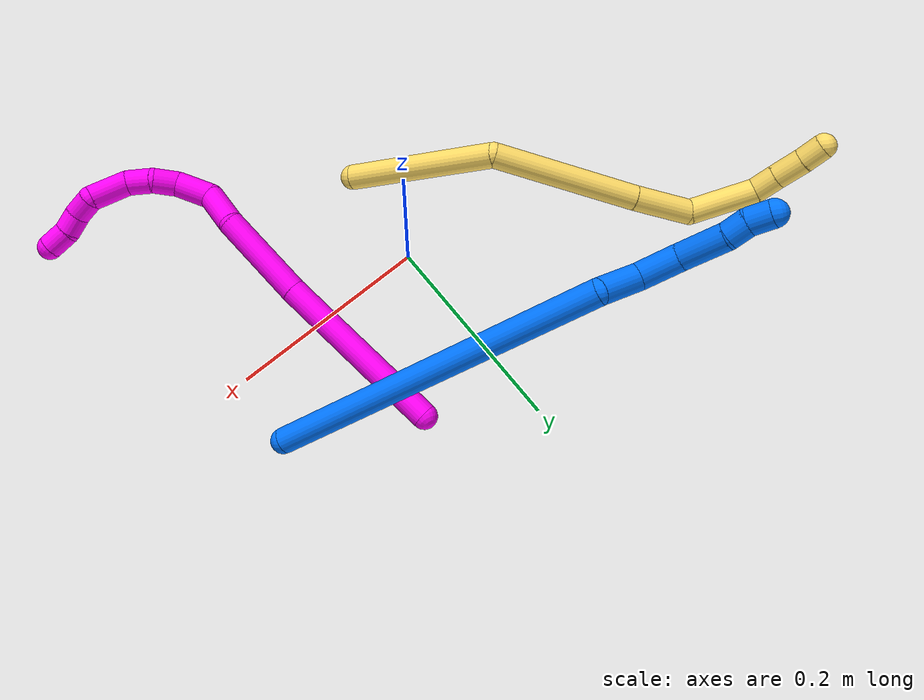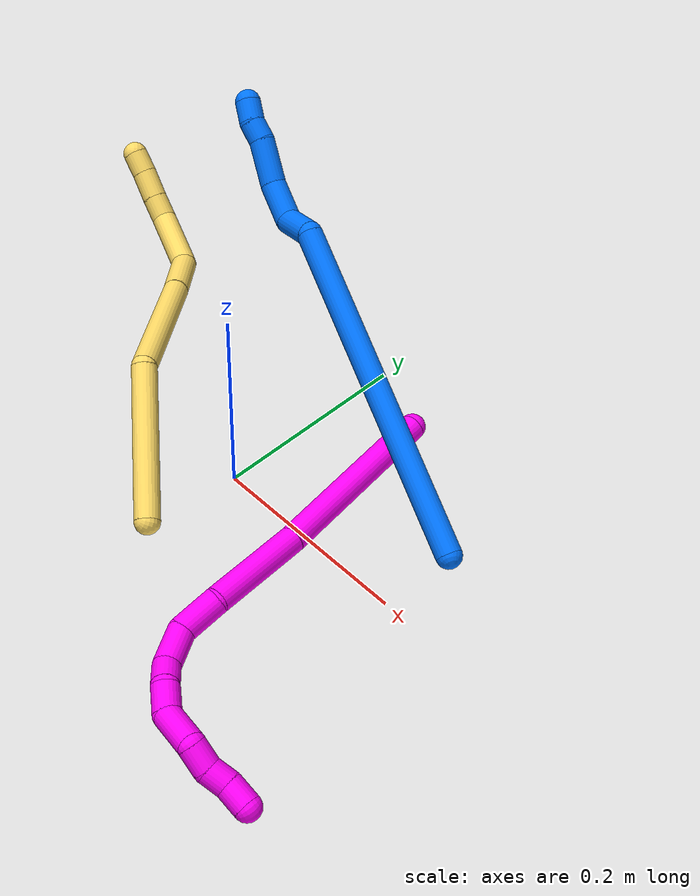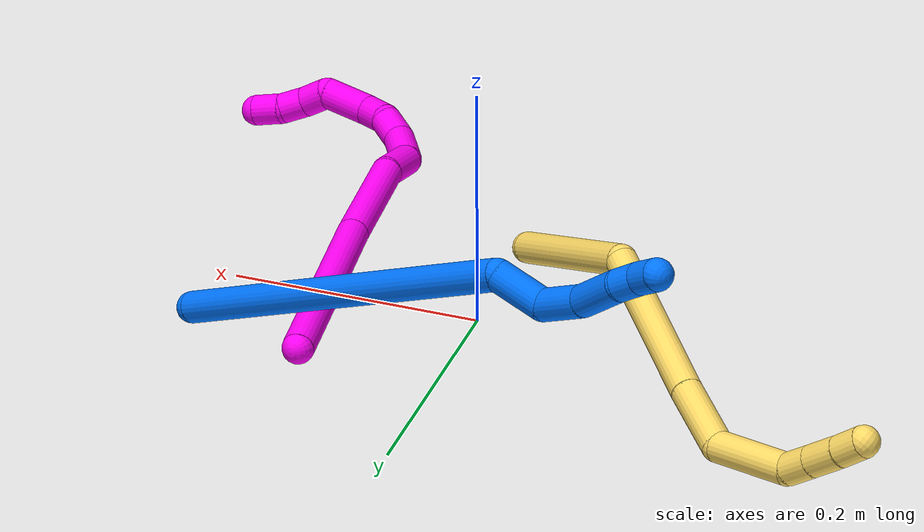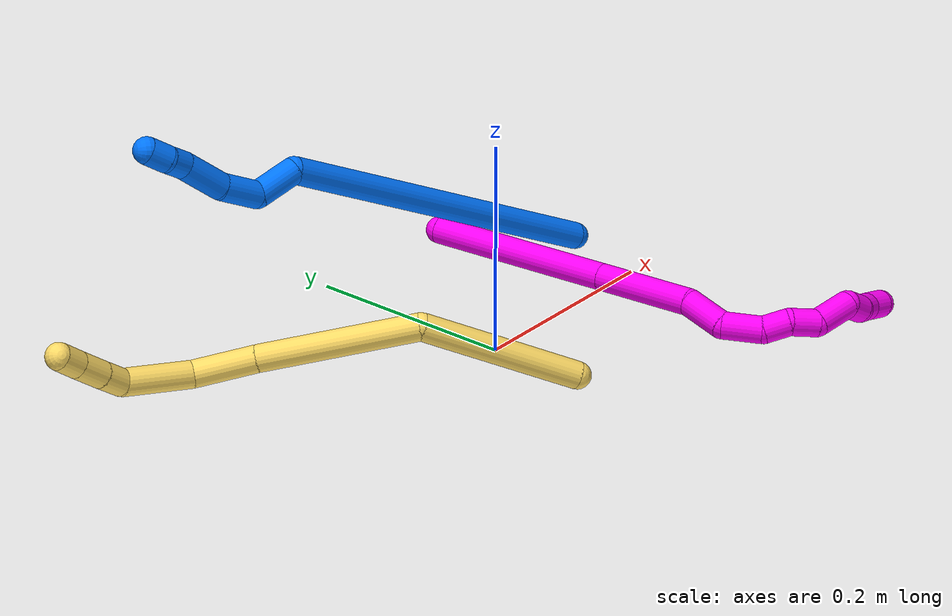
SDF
<sdf version="1.7">
 <world name="default">
  <model name="photoneo_s_sensor">
   <static>1</static>
   <pose>0 0 2 1.57079 1.57079 3.14159</pose>
   <link name="link">
    <inertial><mass>0.1</mass></inertial>
    <sensor name="sensor" type="depth">
     <update_rate>30</update_rate>
     <camera>
      <horizontal_fov>1.22</horizontal_fov>
      <image><width>1920</width><height>1200</height><format>B8G8R8</format></image>
      <clip><near>0.1</near><far>4</far></clip>
      <depth_camera><output>points</output></depth_camera>
     </camera>
     <plugin name="camera_plugin" filename="libgazebo_ros_depth_camera.so">
      <baseline>0.2</baseline>
      <alwaysOn>1</alwaysOn>
      <updateRate>0.0</updateRate>
      <cameraName>camera_ir</cameraName>
      <imageTopicName>/camera/color/image_raw</imageTopicName>
      <cameraInfoTopicName>/camera/color/camera_info</cameraInfoTopicName>
      <depthImageTopicName>/camera/depth/image_raw</depthImageTopicName>
      <depthImageCameraInfoTopicName>/camera/depth/camera_info</depthImageCameraInfoTopicName>
      <pointCloudTopicName>/camera/depth/points</pointCloudTopicName>
      <frameName>fr_optical</frameName>
      <pointCloudCutoff>0.1</pointCloudCutoff>
      <pointCloudCutoffMax>2.0</pointCloudCutoffMax>
      <distortionK1>0</distortionK1>
      <distortionK2>0</distortionK2>
      <distortionK3>0</distortionK3>
      <distortionT1>0</distortionT1>
      <distortionT2>0</distortionT2>
      <CxPrime>0</CxPrime>
      <Cx>0</Cx>
      <Cy>0</Cy>
      <focalLength>0</focalLength>
      <hackBaseline>0</hackBaseline>
     </plugin>
    </sensor>
   </link>
  </model>
  <model name="bin">
   <static>1</static>
   <link name="bottom">
    <collision name="collision-bottom">
     <pose>0 0 -0.01 0 -0 0</pose>
     <geometry><box><size>0.8 0.6 0.02</size></box></geometry>
     <surface>
      <friction><ode><mu>100</mu><mu2>100</mu2></ode></friction>
      <contact><collide_bitmask>65535</collide_bitmask></contact>
     </surface>
    </collision>
   </link>
   <link name="west_wall">
    <collision name="collision-west_wall">
     <pose>-0.41 0 0.1 0 -0 0</pose>
     <geometry><box><size>0.02 0.6 0.2</size></box></geometry>
     <surface>
      <friction><ode><mu>100</mu><mu2>100</mu2></ode></friction>
      <contact><collide_bitmask>65535</collide_bitmask></contact>
     </surface>
    </collision>
   </link>
   <link name="east_wall">
    <collision name="collision-east_wall">
     <pose>0.41 0 0.1 0 -0 0</pose>
     <geometry><box><size>0.02 0.6 0.2</size></box></geometry>
     <surface>
      <friction><ode><mu>100</mu><mu2>100</mu2></ode></friction>
      <contact><collide_bitmask>65535</collide_bitmask></contact>
     </surface>
    </collision>
   </link>
   <link name="south_wall">
    <collision name="collision-south_wall">
     <pose>0 -0.31 0.1 0 -0 0</pose>
     <geometry><box><size>0.8 0.02 0.2</size></box></geometry>
     <surface>
      <friction><ode><mu>100</mu><mu2>100</mu2></ode></friction>
      <contact><collide_bitmask>65535</collide_bitmask></contact>
     </surface>
    </collision>
   </link>
   <link name="north_wall">
    <collision name="collision-north_wall">
     <pose>0 0.31 0.1 0 -0 0</pose>
     <geometry><box><size>0.8 0.02 0.2</size></box></geometry>
     <surface>
      <friction><ode><mu>100</mu><mu2>100</mu2></ode></friction>
      <contact><collide_bitmask>65535</collide_bitmask></contact>
     </surface>
    </collision>
   </link>
  </model>
  <model name="5">
   <static>0</static>
   <link name="5">
    <collision name="collision-cylinder-e_1_1_4">
     <pose>-0.07061 0.026908 -0.005743 -1.78107 -1.19924 1.40302</pose>
     <geometry><cylinder><radius>0.0125</radius><length>0.151563</length></cylinder></geometry>
     <surface>
      <friction><ode><mu>1.16</mu><mu2>1.16</mu2><slip1>0</slip1><slip2>0</slip2></ode></friction>
      <contact><ode><kp>1e+06</kp><kd>1</kd><max_vel>0</max_vel><min_depth>0.001</min_depth></ode></contact>
     </surface>
    </collision>
    <visual name="visual-cylinder-e_1_1_4">
     <pose>-0.07061 0.026908 -0.005743 -1.78107 -1.19924 1.40302</pose>
     <geometry><cylinder><radius>0.0125</radius><length>0.151563</length></cylinder></geometry>
     <material><ambient>1 0.858824 0.4 1</ambient></material>
    </visual>
    <collision name="collision-cylinder-e_2_4_5">
     <pose>-0.187314 0.100899 0.019898 -0.982868 -0.683574 0.376311</pose>
     <geometry><cylinder><radius>0.0125</radius><length>0.145966</length></cylinder></geometry>
     <surface>
      <friction><ode><mu>1.16</mu><mu2>1.16</mu2><slip1>0</slip1><slip2>0</slip2></ode></friction>
      <contact><ode><kp>1e+06</kp><kd>1</kd><max_vel>0</max_vel><min_depth>0.001</min_depth></ode></contact>
     </surface>
    </collision>
    <visual name="visual-cylinder-e_2_4_5">
     <pose>-0.187314 0.100899 0.019898 -0.982868 -0.683574 0.376311</pose>
     <geometry><cylinder><radius>0.0125</radius><length>0.145966</length></cylinder></geometry>
     <material><ambient>1 0.858824 0.4 1</ambient></material>
    </visual>
    <collision name="collision-cylinder-e_3_5_6">
     <pose>-0.251238 0.168125 0.062998 -1.04398 -0.653177 0.384843</pose>
     <geometry><cylinder><radius>0.0125</radius><length>0.05868</length></cylinder></geometry>
     <surface>
      <friction><ode><mu>1.16</mu><mu2>1.16</mu2><slip1>0</slip1><slip2>0</slip2></ode></friction>
      <contact><ode><kp>1e+06</kp><kd>1</kd><max_vel>0</max_vel><min_depth>0.001</min_depth></ode></contact>
     </surface>
    </collision>
    <visual name="visual-cylinder-e_3_5_6">
     <pose>-0.251238 0.168125 0.062998 -1.04398 -0.653177 0.384843</pose>
     <geometry><cylinder><radius>0.0125</radius><length>0.05868</length></cylinder></geometry>
     <material><ambient>1 0.858824 0.4 1</ambient></material>
    </visual>
    <collision name="collision-cylinder-e_4_6_7">
     <pose>-0.292863 0.211196 0.069061 -1.81245 -0.789149 0.977069</pose>
     <geometry><cylinder><radius>0.0125</radius><length>0.06705</length></cylinder></geometry>
     <surface>
      <friction><ode><mu>1.16</mu><mu2>1.16</mu2><slip1>0</slip1><slip2>0</slip2></ode></friction>
      <contact><ode><kp>1e+06</kp><kd>1</kd><max_vel>0</max_vel><min_depth>0.001</min_depth></ode></contact>
     </surface>
    </collision>
    <visual name="visual-cylinder-e_4_6_7">
     <pose>-0.292863 0.211196 0.069061 -1.81245 -0.789149 0.977069</pose>
     <geometry><cylinder><radius>0.0125</radius><length>0.06705</length></cylinder></geometry>
     <material><ambient>1 0.858824 0.4 1</ambient></material>
    </visual>
    <collision name="collision-cylinder-e_5_7_8">
     <pose>-0.326587 0.23813 0.057037 -2.58074 -0.922237 2.09089</pose>
     <geometry><cylinder><radius>0.0125</radius><length>0.02492</length></cylinder></geometry>
     <surface>
      <friction><ode><mu>1.16</mu><mu2>1.16</mu2><slip1>0</slip1><slip2>0</slip2></ode></friction>
      <contact><ode><kp>1e+06</kp><kd>1</kd><max_vel>0</max_vel><min_depth>0.001</min_depth></ode></contact>
     </surface>
    </collision>
    <visual name="visual-cylinder-e_5_7_8">
     <pose>-0.326587 0.23813 0.057037 -2.58074 -0.922237 2.09089</pose>
     <geometry><cylinder><radius>0.0125</radius><length>0.02492</length></cylinder></geometry>
     <material><ambient>1 0.858824 0.4 1</ambient></material>
    </visual>
    <collision name="collision-cylinder-e_6_8_9">
     <pose>-0.348318 0.246515 0.043527 -2.59095 -0.953655 2.14074</pose>
     <geometry><cylinder><radius>0.0125</radius><length>0.02894</length></cylinder></geometry>
     <surface>
      <friction><ode><mu>1.16</mu><mu2>1.16</mu2><slip1>0</slip1><slip2>0</slip2></ode></friction>
      <contact><ode><kp>1e+06</kp><kd>1</kd><max_vel>0</max_vel><min_depth>0.001</min_depth></ode></contact>
     </surface>
    </collision>
    <visual name="visual-cylinder-e_6_8_9">
     <pose>-0.348318 0.246515 0.043527 -2.59095 -0.953655 2.14074</pose>
     <geometry><cylinder><radius>0.0125</radius><length>0.02894</length></cylinder></geometry>
     <material><ambient>1 0.858824 0.4 1</ambient></material>
    </visual>
    <collision name="collision-cylinder-e_7_9_2">
     <pose>-0.369101 0.254187 0.030115 -2.65867 -0.902768 2.20151</pose>
     <geometry><cylinder><radius>0.0125</radius><length>0.022882</length></cylinder></geometry>
     <surface>
      <friction><ode><mu>1.16</mu><mu2>1.16</mu2><slip1>0</slip1><slip2>0</slip2></ode></friction>
      <contact><ode><kp>1e+06</kp><kd>1</kd><max_vel>0</max_vel><min_depth>0.001</min_depth></ode></contact>
     </surface>
    </collision>
    <visual name="visual-cylinder-e_7_9_2">
     <pose>-0.369101 0.254187 0.030115 -2.65867 -0.902768 2.20151</pose>
     <geometry><cylinder><radius>0.0125</radius><length>0.022882</length></cylinder></geometry>
     <material><ambient>1 0.858824 0.4 1</ambient></material>
    </visual>
    <collision name="collision-sphere-2">
     <pose>-0.378082 0.257478 0.023838 0 -0 0</pose>
     <geometry><sphere><radius>0.0125</radius></sphere></geometry>
     <surface>
      <friction><ode><mu>1.16</mu><mu2>1.16</mu2><slip1>0</slip1><slip2>0</slip2></ode></friction>
      <contact><ode><kp>1e+06</kp><kd>1</kd><max_vel>0</max_vel><min_depth>0.001</min_depth></ode></contact>
     </surface>
    </collision>
    <visual name="visual-sphere-2">
     <pose>-0.378082 0.257478 0.023838 0 -0 0</pose>
     <geometry><sphere><radius>0.0125</radius></sphere></geometry>
     <material><ambient>1 0.858824 0.4 1</ambient></material>
    </visual>
    <collision name="collision-sphere-9">
     <pose>-0.360119 0.250896 0.036391 0 -0 0</pose>
     <geometry><sphere><radius>0.0125</radius></sphere></geometry>
     <surface>
      <friction><ode><mu>1.16</mu><mu2>1.16</mu2><slip1>0</slip1><slip2>0</slip2></ode></friction>
      <contact><ode><kp>1e+06</kp><kd>1</kd><max_vel>0</max_vel><min_depth>0.001</min_depth></ode></contact>
     </surface>
    </collision>
    <visual name="visual-sphere-9">
     <pose>-0.360119 0.250896 0.036391 0 -0 0</pose>
     <geometry><sphere><radius>0.0125</radius></sphere></geometry>
     <material><ambient>1 0.858824 0.4 1</ambient></material>
    </visual>
    <collision name="collision-sphere-4">
     <pose>-0.141221 0.053815 -0.011486 0 -0 0</pose>
     <geometry><sphere><radius>0.0125</radius></sphere></geometry>
     <surface>
      <friction><ode><mu>1.16</mu><mu2>1.16</mu2><slip1>0</slip1><slip2>0</slip2></ode></friction>
      <contact><ode><kp>1e+06</kp><kd>1</kd><max_vel>0</max_vel><min_depth>0.001</min_depth></ode></contact>
     </surface>
    </collision>
    <visual name="visual-sphere-4">
     <pose>-0.141221 0.053815 -0.011486 0 -0 0</pose>
     <geometry><sphere><radius>0.0125</radius></sphere></geometry>
     <material><ambient>1 0.858824 0.4 1</ambient></material>
    </visual>
    <collision name="collision-sphere-1">
     <geometry><sphere><radius>0.0125</radius></sphere></geometry>
     <surface>
      <friction><ode><mu>1.16</mu><mu2>1.16</mu2><slip1>0</slip1><slip2>0</slip2></ode></friction>
      <contact><ode><kp>1e+06</kp><kd>1</kd><max_vel>0</max_vel><min_depth>0.001</min_depth></ode></contact>
     </surface>
    </collision>
    <visual name="visual-sphere-1">
     <geometry><sphere><radius>0.0125</radius></sphere></geometry>
     <material><ambient>1 0.858824 0.4 1</ambient></material>
    </visual>
    <collision name="collision-sphere-8">
     <pose>-0.336517 0.242133 0.050663 0 -0 0</pose>
     <geometry><sphere><radius>0.0125</radius></sphere></geometry>
     <surface>
      <friction><ode><mu>1.16</mu><mu2>1.16</mu2><slip1>0</slip1><slip2>0</slip2></ode></friction>
      <contact><ode><kp>1e+06</kp><kd>1</kd><max_vel>0</max_vel><min_depth>0.001</min_depth></ode></contact>
     </surface>
    </collision>
    <visual name="visual-sphere-8">
     <pose>-0.336517 0.242133 0.050663 0 -0 0</pose>
     <geometry><sphere><radius>0.0125</radius></sphere></geometry>
     <material><ambient>1 0.858824 0.4 1</ambient></material>
    </visual>
    <collision name="collision-sphere-5">
     <pose>-0.233408 0.147983 0.051283 0 -0 0</pose>
     <geometry><sphere><radius>0.0125</radius></sphere></geometry>
     <surface>
      <friction><ode><mu>1.16</mu><mu2>1.16</mu2><slip1>0</slip1><slip2>0</slip2></ode></friction>
      <contact><ode><kp>1e+06</kp><kd>1</kd><max_vel>0</max_vel><min_depth>0.001</min_depth></ode></contact>
     </surface>
    </collision>
    <visual name="visual-sphere-5">
     <pose>-0.233408 0.147983 0.051283 0 -0 0</pose>
     <geometry><sphere><radius>0.0125</radius></sphere></geometry>
     <material><ambient>1 0.858824 0.4 1</ambient></material>
    </visual>
    <collision name="collision-sphere-6">
     <pose>-0.269069 0.188266 0.074713 0 -0 0</pose>
     <geometry><sphere><radius>0.0125</radius></sphere></geometry>
     <surface>
      <friction><ode><mu>1.16</mu><mu2>1.16</mu2><slip1>0</slip1><slip2>0</slip2></ode></friction>
      <contact><ode><kp>1e+06</kp><kd>1</kd><max_vel>0</max_vel><min_depth>0.001</min_depth></ode></contact>
     </surface>
    </collision>
    <visual name="visual-sphere-6">
     <pose>-0.269069 0.188266 0.074713 0 -0 0</pose>
     <geometry><sphere><radius>0.0125</radius></sphere></geometry>
     <material><ambient>1 0.858824 0.4 1</ambient></material>
    </visual>
    <collision name="collision-sphere-7">
     <pose>-0.316657 0.234127 0.06341 0 -0 0</pose>
     <geometry><sphere><radius>0.0125</radius></sphere></geometry>
     <surface>
      <friction><ode><mu>1.16</mu><mu2>1.16</mu2><slip1>0</slip1><slip2>0</slip2></ode></friction>
      <contact><ode><kp>1e+06</kp><kd>1</kd><max_vel>0</max_vel><min_depth>0.001</min_depth></ode></contact>
     </surface>
    </collision>
    <visual name="visual-sphere-7">
     <pose>-0.316657 0.234127 0.06341 0 -0 0</pose>
     <geometry><sphere><radius>0.0125</radius></sphere></geometry>
     <material><ambient>1 0.858824 0.4 1</ambient></material>
    </visual>
    <inertial>
     <pose>-0.198174 0.123434 0.027463 0 -0 0</pose>
     <mass>0.5</mass>
     <inertia>
      <ixx>0.000409</ixx>
      <ixy>0</ixy>
      <ixz>0</ixz>
      <iyy>0.000701</iyy>
      <iyz>0</iyz>
      <izz>0.000172</izz>
     </inertia>
    </inertial>
   </link>
   <pose>-0.007665 -0.098437 0.01147 -2.32797 0.656531 -1.03339</pose>
  </model>
  <model name="10">
   <static>0</static>
   <link name="10">
    <collision name="collision-cylinder-e_1_1_4">
     <pose>0.008804 -0.025486 0.082963 0.298048 0.1011 0.015192</pose>
     <geometry><cylinder><radius>0.0125</radius><length>0.17447</length></cylinder></geometry>
     <surface>
      <friction><ode><mu>1.16</mu><mu2>1.16</mu2><slip1>0</slip1><slip2>0</slip2></ode></friction>
      <contact><ode><kp>1e+06</kp><kd>1</kd><max_vel>0</max_vel><min_depth>0.001</min_depth></ode></contact>
     </surface>
    </collision>
    <visual name="visual-cylinder-e_1_1_4">
     <pose>0.008804 -0.025486 0.082963 0.298048 0.1011 0.015192</pose>
     <geometry><cylinder><radius>0.0125</radius><length>0.17447</length></cylinder></geometry>
     <material><ambient>1 0 0.964706 1</ambient></material>
    </visual>
    <collision name="collision-cylinder-e_2_4_5">
     <pose>0.0246 -0.06277 0.210552 0.258464 0.150304 0.019569</pose>
     <geometry><cylinder><radius>0.0125</radius><length>0.09337</length></cylinder></geometry>
     <surface>
      <friction><ode><mu>1.16</mu><mu2>1.16</mu2><slip1>0</slip1><slip2>0</slip2></ode></friction>
      <contact><ode><kp>1e+06</kp><kd>1</kd><max_vel>0</max_vel><min_depth>0.001</min_depth></ode></contact>
     </surface>
    </collision>
    <visual name="visual-cylinder-e_2_4_5">
     <pose>0.0246 -0.06277 0.210552 0.258464 0.150304 0.019569</pose>
     <geometry><cylinder><radius>0.0125</radius><length>0.09337</length></cylinder></geometry>
     <material><ambient>1 0 0.964706 1</ambient></material>
    </visual>
    <collision name="collision-cylinder-e_3_5_6">
     <pose>0.030391 -0.075495 0.274854 0.047055 -0.060779 -0.001431</pose>
     <geometry><cylinder><radius>0.0125</radius><length>0.039469</length></cylinder></geometry>
     <surface>
      <friction><ode><mu>1.16</mu><mu2>1.16</mu2><slip1>0</slip1><slip2>0</slip2></ode></friction>
      <contact><ode><kp>1e+06</kp><kd>1</kd><max_vel>0</max_vel><min_depth>0.001</min_depth></ode></contact>
     </surface>
    </collision>
    <visual name="visual-cylinder-e_3_5_6">
     <pose>0.030391 -0.075495 0.274854 0.047055 -0.060779 -0.001431</pose>
     <geometry><cylinder><radius>0.0125</radius><length>0.039469</length></cylinder></geometry>
     <material><ambient>1 0 0.964706 1</ambient></material>
    </visual>
    <collision name="collision-cylinder-e_4_6_7">
     <pose>0.027768 -0.087435 0.309113 0.646847 -0.077781 -0.026083</pose>
     <geometry><cylinder><radius>0.0125</radius><length>0.036661</length></cylinder></geometry>
     <surface>
      <friction><ode><mu>1.16</mu><mu2>1.16</mu2><slip1>0</slip1><slip2>0</slip2></ode></friction>
      <contact><ode><kp>1e+06</kp><kd>1</kd><max_vel>0</max_vel><min_depth>0.001</min_depth></ode></contact>
     </surface>
    </collision>
    <visual name="visual-cylinder-e_4_6_7">
     <pose>0.027768 -0.087435 0.309113 0.646847 -0.077781 -0.026083</pose>
     <geometry><cylinder><radius>0.0125</radius><length>0.036661</length></cylinder></geometry>
     <material><ambient>1 0 0.964706 1</ambient></material>
    </visual>
    <collision name="collision-cylinder-e_5_7_8">
     <pose>0.027302 -0.109024 0.329633 1.05924 0.078821 0.046158</pose>
     <geometry><cylinder><radius>0.0125</radius><length>0.024329</length></cylinder></geometry>
     <surface>
      <friction><ode><mu>1.16</mu><mu2>1.16</mu2><slip1>0</slip1><slip2>0</slip2></ode></friction>
      <contact><ode><kp>1e+06</kp><kd>1</kd><max_vel>0</max_vel><min_depth>0.001</min_depth></ode></contact>
     </surface>
    </collision>
    <visual name="visual-cylinder-e_5_7_8">
     <pose>0.027302 -0.109024 0.329633 1.05924 0.078821 0.046158</pose>
     <geometry><cylinder><radius>0.0125</radius><length>0.024329</length></cylinder></geometry>
     <material><ambient>1 0 0.964706 1</ambient></material>
    </visual>
    <collision name="collision-cylinder-e_6_8_9">
     <pose>0.023855 -0.129906 0.342386 0.986537 -0.342404 -0.185362</pose>
     <geometry><cylinder><radius>0.0125</radius><length>0.026239</length></cylinder></geometry>
     <surface>
      <friction><ode><mu>1.16</mu><mu2>1.16</mu2><slip1>0</slip1><slip2>0</slip2></ode></friction>
      <contact><ode><kp>1e+06</kp><kd>1</kd><max_vel>0</max_vel><min_depth>0.001</min_depth></ode></contact>
     </surface>
    </collision>
    <visual name="visual-cylinder-e_6_8_9">
     <pose>0.023855 -0.129906 0.342386 0.986537 -0.342404 -0.185362</pose>
     <geometry><cylinder><radius>0.0125</radius><length>0.026239</length></cylinder></geometry>
     <material><ambient>1 0 0.964706 1</ambient></material>
    </visual>
    <collision name="collision-cylinder-e_7_9_10">
     <pose>0.016004 -0.159186 0.349326 1.5643 -0.179663 -0.178505</pose>
     <geometry><cylinder><radius>0.0125</radius><length>0.038566</length></cylinder></geometry>
     <surface>
      <friction><ode><mu>1.16</mu><mu2>1.16</mu2><slip1>0</slip1><slip2>0</slip2></ode></friction>
      <contact><ode><kp>1e+06</kp><kd>1</kd><max_vel>0</max_vel><min_depth>0.001</min_depth></ode></contact>
     </surface>
    </collision>
    <visual name="visual-cylinder-e_7_9_10">
     <pose>0.016004 -0.159186 0.349326 1.5643 -0.179663 -0.178505</pose>
     <geometry><cylinder><radius>0.0125</radius><length>0.038566</length></cylinder></geometry>
     <material><ambient>1 0 0.964706 1</ambient></material>
    </visual>
    <collision name="collision-cylinder-e_8_10_11">
     <pose>0.003515 -0.185248 0.349878 1.51032 -0.905057 -0.858364</pose>
     <geometry><cylinder><radius>0.0125</radius><length>0.022999</length></cylinder></geometry>
     <surface>
      <friction><ode><mu>1.16</mu><mu2>1.16</mu2><slip1>0</slip1><slip2>0</slip2></ode></friction>
      <contact><ode><kp>1e+06</kp><kd>1</kd><max_vel>0</max_vel><min_depth>0.001</min_depth></ode></contact>
     </surface>
    </collision>
    <visual name="visual-cylinder-e_8_10_11">
     <pose>0.003515 -0.185248 0.349878 1.51032 -0.905057 -0.858364</pose>
     <geometry><cylinder><radius>0.0125</radius><length>0.022999</length></cylinder></geometry>
     <material><ambient>1 0 0.964706 1</ambient></material>
    </visual>
    <collision name="collision-cylinder-e_9_11_12">
     <pose>-0.012525 -0.199373 0.34726 1.97955 -0.739652 -1.06664</pose>
     <geometry><cylinder><radius>0.0125</radius><length>0.020758</length></cylinder></geometry>
     <surface>
      <friction><ode><mu>1.16</mu><mu2>1.16</mu2><slip1>0</slip1><slip2>0</slip2></ode></friction>
      <contact><ode><kp>1e+06</kp><kd>1</kd><max_vel>0</max_vel><min_depth>0.001</min_depth></ode></contact>
     </surface>
    </collision>
    <visual name="visual-cylinder-e_9_11_12">
     <pose>-0.012525 -0.199373 0.34726 1.97955 -0.739652 -1.06664</pose>
     <geometry><cylinder><radius>0.0125</radius><length>0.020758</length></cylinder></geometry>
     <material><ambient>1 0 0.964706 1</ambient></material>
    </visual>
    <collision name="collision-cylinder-e_10_12_2">
     <pose>-0.026161 -0.215856 0.343504 1.64569 -0.611326 -0.655684</pose>
     <geometry><cylinder><radius>0.0125</radius><length>0.023138</length></cylinder></geometry>
     <surface>
      <friction><ode><mu>1.16</mu><mu2>1.16</mu2><slip1>0</slip1><slip2>0</slip2></ode></friction>
      <contact><ode><kp>1e+06</kp><kd>1</kd><max_vel>0</max_vel><min_depth>0.001</min_depth></ode></contact>
     </surface>
    </collision>
    <visual name="visual-cylinder-e_10_12_2">
     <pose>-0.026161 -0.215856 0.343504 1.64569 -0.611326 -0.655684</pose>
     <geometry><cylinder><radius>0.0125</radius><length>0.023138</length></cylinder></geometry>
     <material><ambient>1 0 0.964706 1</ambient></material>
    </visual>
    <collision name="collision-sphere-2">
     <pose>-0.032801 -0.225303 0.342795 0 -0 0</pose>
     <geometry><sphere><radius>0.0125</radius></sphere></geometry>
     <surface>
      <friction><ode><mu>1.16</mu><mu2>1.16</mu2><slip1>0</slip1><slip2>0</slip2></ode></friction>
      <contact><ode><kp>1e+06</kp><kd>1</kd><max_vel>0</max_vel><min_depth>0.001</min_depth></ode></contact>
     </surface>
    </collision>
    <visual name="visual-sphere-2">
     <pose>-0.032801 -0.225303 0.342795 0 -0 0</pose>
     <geometry><sphere><radius>0.0125</radius></sphere></geometry>
     <material><ambient>1 0 0.964706 1</ambient></material>
    </visual>
    <collision name="collision-sphere-12">
     <pose>-0.019521 -0.206409 0.344213 0 -0 0</pose>
     <geometry><sphere><radius>0.0125</radius></sphere></geometry>
     <surface>
      <friction><ode><mu>1.16</mu><mu2>1.16</mu2><slip1>0</slip1><slip2>0</slip2></ode></friction>
      <contact><ode><kp>1e+06</kp><kd>1</kd><max_vel>0</max_vel><min_depth>0.001</min_depth></ode></contact>
     </surface>
    </collision>
    <visual name="visual-sphere-12">
     <pose>-0.019521 -0.206409 0.344213 0 -0 0</pose>
     <geometry><sphere><radius>0.0125</radius></sphere></geometry>
     <material><ambient>1 0 0.964706 1</ambient></material>
    </visual>
    <collision name="collision-sphere-11">
     <pose>-0.005529 -0.192338 0.350307 0 -0 0</pose>
     <geometry><sphere><radius>0.0125</radius></sphere></geometry>
     <surface>
      <friction><ode><mu>1.16</mu><mu2>1.16</mu2><slip1>0</slip1><slip2>0</slip2></ode></friction>
      <contact><ode><kp>1e+06</kp><kd>1</kd><max_vel>0</max_vel><min_depth>0.001</min_depth></ode></contact>
     </surface>
    </collision>
    <visual name="visual-sphere-11">
     <pose>-0.005529 -0.192338 0.350307 0 -0 0</pose>
     <geometry><sphere><radius>0.0125</radius></sphere></geometry>
     <material><ambient>1 0 0.964706 1</ambient></material>
    </visual>
    <collision name="collision-sphere-10">
     <pose>0.012558 -0.178159 0.349449 0 -0 0</pose>
     <geometry><sphere><radius>0.0125</radius></sphere></geometry>
     <surface>
      <friction><ode><mu>1.16</mu><mu2>1.16</mu2><slip1>0</slip1><slip2>0</slip2></ode></friction>
      <contact><ode><kp>1e+06</kp><kd>1</kd><max_vel>0</max_vel><min_depth>0.001</min_depth></ode></contact>
     </surface>
    </collision>
    <visual name="visual-sphere-10">
     <pose>0.012558 -0.178159 0.349449 0 -0 0</pose>
     <geometry><sphere><radius>0.0125</radius></sphere></geometry>
     <material><ambient>1 0 0.964706 1</ambient></material>
    </visual>
    <collision name="collision-sphere-9">
     <pose>0.01945 -0.140214 0.349202 0 -0 0</pose>
     <geometry><sphere><radius>0.0125</radius></sphere></geometry>
     <surface>
      <friction><ode><mu>1.16</mu><mu2>1.16</mu2><slip1>0</slip1><slip2>0</slip2></ode></friction>
      <contact><ode><kp>1e+06</kp><kd>1</kd><max_vel>0</max_vel><min_depth>0.001</min_depth></ode></contact>
     </surface>
    </collision>
    <visual name="visual-sphere-9">
     <pose>0.01945 -0.140214 0.349202 0 -0 0</pose>
     <geometry><sphere><radius>0.0125</radius></sphere></geometry>
     <material><ambient>1 0 0.964706 1</ambient></material>
    </visual>
    <collision name="collision-sphere-4">
     <pose>0.017609 -0.050972 0.165927 0 -0 0</pose>
     <geometry><sphere><radius>0.0125</radius></sphere></geometry>
     <surface>
      <friction><ode><mu>1.16</mu><mu2>1.16</mu2><slip1>0</slip1><slip2>0</slip2></ode></friction>
      <contact><ode><kp>1e+06</kp><kd>1</kd><max_vel>0</max_vel><min_depth>0.001</min_depth></ode></contact>
     </surface>
    </collision>
    <visual name="visual-sphere-4">
     <pose>0.017609 -0.050972 0.165927 0 -0 0</pose>
     <geometry><sphere><radius>0.0125</radius></sphere></geometry>
     <material><ambient>1 0 0.964706 1</ambient></material>
    </visual>
    <collision name="collision-sphere-1">
     <geometry><sphere><radius>0.0125</radius></sphere></geometry>
     <surface>
      <friction><ode><mu>1.16</mu><mu2>1.16</mu2><slip1>0</slip1><slip2>0</slip2></ode></friction>
      <contact><ode><kp>1e+06</kp><kd>1</kd><max_vel>0</max_vel><min_depth>0.001</min_depth></ode></contact>
     </surface>
    </collision>
    <visual name="visual-sphere-1">
     <geometry><sphere><radius>0.0125</radius></sphere></geometry>
     <material><ambient>1 0 0.964706 1</ambient></material>
    </visual>
    <collision name="collision-sphere-8">
     <pose>0.02826 -0.119598 0.33557 0 -0 0</pose>
     <geometry><sphere><radius>0.0125</radius></sphere></geometry>
     <surface>
      <friction><ode><mu>1.16</mu><mu2>1.16</mu2><slip1>0</slip1><slip2>0</slip2></ode></friction>
      <contact><ode><kp>1e+06</kp><kd>1</kd><max_vel>0</max_vel><min_depth>0.001</min_depth></ode></contact>
     </surface>
    </collision>
    <visual name="visual-sphere-8">
     <pose>0.02826 -0.119598 0.33557 0 -0 0</pose>
     <geometry><sphere><radius>0.0125</radius></sphere></geometry>
     <material><ambient>1 0 0.964706 1</ambient></material>
    </visual>
    <collision name="collision-sphere-5">
     <pose>0.03159 -0.074568 0.255178 0 -0 0</pose>
     <geometry><sphere><radius>0.0125</radius></sphere></geometry>
     <surface>
      <friction><ode><mu>1.16</mu><mu2>1.16</mu2><slip1>0</slip1><slip2>0</slip2></ode></friction>
      <contact><ode><kp>1e+06</kp><kd>1</kd><max_vel>0</max_vel><min_depth>0.001</min_depth></ode></contact>
     </surface>
    </collision>
    <visual name="visual-sphere-5">
     <pose>0.03159 -0.074568 0.255178 0 -0 0</pose>
     <geometry><sphere><radius>0.0125</radius></sphere></geometry>
     <material><ambient>1 0 0.964706 1</ambient></material>
    </visual>
    <collision name="collision-sphere-6">
     <pose>0.029193 -0.076422 0.29453 0 -0 0</pose>
     <geometry><sphere><radius>0.0125</radius></sphere></geometry>
     <surface>
      <friction><ode><mu>1.16</mu><mu2>1.16</mu2><slip1>0</slip1><slip2>0</slip2></ode></friction>
      <contact><ode><kp>1e+06</kp><kd>1</kd><max_vel>0</max_vel><min_depth>0.001</min_depth></ode></contact>
     </surface>
    </collision>
    <visual name="visual-sphere-6">
     <pose>0.029193 -0.076422 0.29453 0 -0 0</pose>
     <geometry><sphere><radius>0.0125</radius></sphere></geometry>
     <material><ambient>1 0 0.964706 1</ambient></material>
    </visual>
    <collision name="collision-sphere-7">
     <pose>0.026344 -0.098449 0.323697 0 -0 0</pose>
     <geometry><sphere><radius>0.0125</radius></sphere></geometry>
     <surface>
      <friction><ode><mu>1.16</mu><mu2>1.16</mu2><slip1>0</slip1><slip2>0</slip2></ode></friction>
      <contact><ode><kp>1e+06</kp><kd>1</kd><max_vel>0</max_vel><min_depth>0.001</min_depth></ode></contact>
     </surface>
    </collision>
    <visual name="visual-sphere-7">
     <pose>0.026344 -0.098449 0.323697 0 -0 0</pose>
     <geometry><sphere><radius>0.0125</radius></sphere></geometry>
     <material><ambient>1 0 0.964706 1</ambient></material>
    </visual>
    <inertial>
     <pose>0.014347 -0.084173 0.219987 0 -0 0</pose>
     <mass>0.5</mass>
     <inertia>
      <ixx>0.000544</ixx>
      <ixy>0</ixy>
      <ixz>0</ixz>
      <iyy>0.000501</iyy>
      <iyz>0</iyz>
      <izz>0.000144</izz>
     </inertia>
    </inertial>
   </link>
   <pose>0.092861 0.141678 0.040418 -2.13883 -1.17645 -2.73291</pose>
  </model>
  <model name="14">
   <static>0</static>
   <link name="14">
    <collision name="collision-cylinder-e_1_1_4">
     <pose>0.015615 -0.056302 -0.155235 2.79366 0.094281 0.524507</pose>
     <geometry><cylinder><radius>0.0125</radius><length>0.331733</length></cylinder></geometry>
     <surface>
      <friction><ode><mu>1.16</mu><mu2>1.16</mu2><slip1>0</slip1><slip2>0</slip2></ode></friction>
      <contact><ode><kp>1e+06</kp><kd>1</kd><max_vel>0</max_vel><min_depth>0.001</min_depth></ode></contact>
     </surface>
    </collision>
    <visual name="visual-cylinder-e_1_1_4">
     <pose>0.015615 -0.056302 -0.155235 2.79366 0.094281 0.524507</pose>
     <geometry><cylinder><radius>0.0125</radius><length>0.331733</length></cylinder></geometry>
     <material><ambient>0 0.462745 1 1</ambient></material>
    </visual>
    <collision name="collision-cylinder-e_2_4_5">
     <pose>0.038622 -0.105175 -0.328597 -2.7527 0.360817 -1.49414</pose>
     <geometry><cylinder><radius>0.0125</radius><length>0.041876</length></cylinder></geometry>
     <surface>
      <friction><ode><mu>1.16</mu><mu2>1.16</mu2><slip1>0</slip1><slip2>0</slip2></ode></friction>
      <contact><ode><kp>1e+06</kp><kd>1</kd><max_vel>0</max_vel><min_depth>0.001</min_depth></ode></contact>
     </surface>
    </collision>
    <visual name="visual-cylinder-e_2_4_5">
     <pose>0.038622 -0.105175 -0.328597 -2.7527 0.360817 -1.49414</pose>
     <geometry><cylinder><radius>0.0125</radius><length>0.041876</length></cylinder></geometry>
     <material><ambient>0 0.462745 1 1</ambient></material>
    </visual>
    <collision name="collision-cylinder-e_3_5_6">
     <pose>0.047859 -0.10456 -0.365463 2.79292 0.092291 0.512835</pose>
     <geometry><cylinder><radius>0.0125</radius><length>0.040048</length></cylinder></geometry>
     <surface>
      <friction><ode><mu>1.16</mu><mu2>1.16</mu2><slip1>0</slip1><slip2>0</slip2></ode></friction>
      <contact><ode><kp>1e+06</kp><kd>1</kd><max_vel>0</max_vel><min_depth>0.001</min_depth></ode></contact>
     </surface>
    </collision>
    <visual name="visual-cylinder-e_3_5_6">
     <pose>0.047859 -0.10456 -0.365463 2.79292 0.092291 0.512835</pose>
     <geometry><cylinder><radius>0.0125</radius><length>0.040048</length></cylinder></geometry>
     <material><ambient>0 0.462745 1 1</ambient></material>
    </visual>
    <collision name="collision-cylinder-e_4_6_7">
     <pose>0.04865 -0.123047 -0.403196 2.59046 -0.047269 -0.166813</pose>
     <geometry><cylinder><radius>0.0125</radius><length>0.04464</length></cylinder></geometry>
     <surface>
      <friction><ode><mu>1.16</mu><mu2>1.16</mu2><slip1>0</slip1><slip2>0</slip2></ode></friction>
      <contact><ode><kp>1e+06</kp><kd>1</kd><max_vel>0</max_vel><min_depth>0.001</min_depth></ode></contact>
     </surface>
    </collision>
    <visual name="visual-cylinder-e_4_6_7">
     <pose>0.04865 -0.123047 -0.403196 2.59046 -0.047269 -0.166813</pose>
     <geometry><cylinder><radius>0.0125</radius><length>0.04464</length></cylinder></geometry>
     <material><ambient>0 0.462745 1 1</ambient></material>
    </visual>
    <collision name="collision-cylinder-e_5_7_8">
     <pose>0.049446 -0.139563 -0.430761 2.62742 0.185847 0.681301</pose>
     <geometry><cylinder><radius>0.0125</radius><length>0.020032</length></cylinder></geometry>
     <surface>
      <friction><ode><mu>1.16</mu><mu2>1.16</mu2><slip1>0</slip1><slip2>0</slip2></ode></friction>
      <contact><ode><kp>1e+06</kp><kd>1</kd><max_vel>0</max_vel><min_depth>0.001</min_depth></ode></contact>
     </surface>
    </collision>
    <visual name="visual-cylinder-e_5_7_8">
     <pose>0.049446 -0.139563 -0.430761 2.62742 0.185847 0.681301</pose>
     <geometry><cylinder><radius>0.0125</radius><length>0.020032</length></cylinder></geometry>
     <material><ambient>0 0.462745 1 1</ambient></material>
    </visual>
    <collision name="collision-cylinder-e_6_8_2">
     <pose>0.050303 -0.148833 -0.449171 2.71863 -0.091866 -0.421833</pose>
     <geometry><cylinder><radius>0.0125</radius><length>0.021671</length></cylinder></geometry>
     <surface>
      <friction><ode><mu>1.16</mu><mu2>1.16</mu2><slip1>0</slip1><slip2>0</slip2></ode></friction>
      <contact><ode><kp>1e+06</kp><kd>1</kd><max_vel>0</max_vel><min_depth>0.001</min_depth></ode></contact>
     </surface>
    </collision>
    <visual name="visual-cylinder-e_6_8_2">
     <pose>0.050303 -0.148833 -0.449171 2.71863 -0.091866 -0.421833</pose>
     <geometry><cylinder><radius>0.0125</radius><length>0.021671</length></cylinder></geometry>
     <material><ambient>0 0.462745 1 1</ambient></material>
    </visual>
    <collision name="collision-sphere-2">
     <pose>0.049309 -0.153262 -0.45901 0 -0 0</pose>
     <geometry><sphere><radius>0.0125</radius></sphere></geometry>
     <surface>
      <friction><ode><mu>1.16</mu><mu2>1.16</mu2><slip1>0</slip1><slip2>0</slip2></ode></friction>
      <contact><ode><kp>1e+06</kp><kd>1</kd><max_vel>0</max_vel><min_depth>0.001</min_depth></ode></contact>
     </surface>
    </collision>
    <visual name="visual-sphere-2">
     <pose>0.049309 -0.153262 -0.45901 0 -0 0</pose>
     <geometry><sphere><radius>0.0125</radius></sphere></geometry>
     <material><ambient>0 0.462745 1 1</ambient></material>
    </visual>
    <collision name="collision-sphere-4">
     <pose>0.03123 -0.112603 -0.31047 0 -0 0</pose>
     <geometry><sphere><radius>0.0125</radius></sphere></geometry>
     <surface>
      <friction><ode><mu>1.16</mu><mu2>1.16</mu2><slip1>0</slip1><slip2>0</slip2></ode></friction>
      <contact><ode><kp>1e+06</kp><kd>1</kd><max_vel>0</max_vel><min_depth>0.001</min_depth></ode></contact>
     </surface>
    </collision>
    <visual name="visual-sphere-4">
     <pose>0.03123 -0.112603 -0.31047 0 -0 0</pose>
     <geometry><sphere><radius>0.0125</radius></sphere></geometry>
     <material><ambient>0 0.462745 1 1</ambient></material>
    </visual>
    <collision name="collision-sphere-1">
     <geometry><sphere><radius>0.0125</radius></sphere></geometry>
     <surface>
      <friction><ode><mu>1.16</mu><mu2>1.16</mu2><slip1>0</slip1><slip2>0</slip2></ode></friction>
      <contact><ode><kp>1e+06</kp><kd>1</kd><max_vel>0</max_vel><min_depth>0.001</min_depth></ode></contact>
     </surface>
    </collision>
    <visual name="visual-sphere-1">
     <geometry><sphere><radius>0.0125</radius></sphere></geometry>
     <material><ambient>0 0.462745 1 1</ambient></material>
    </visual>
    <collision name="collision-sphere-8">
     <pose>0.051297 -0.144404 -0.439332 0 -0 0</pose>
     <geometry><sphere><radius>0.0125</radius></sphere></geometry>
     <surface>
      <friction><ode><mu>1.16</mu><mu2>1.16</mu2><slip1>0</slip1><slip2>0</slip2></ode></friction>
      <contact><ode><kp>1e+06</kp><kd>1</kd><max_vel>0</max_vel><min_depth>0.001</min_depth></ode></contact>
     </surface>
    </collision>
    <visual name="visual-sphere-8">
     <pose>0.051297 -0.144404 -0.439332 0 -0 0</pose>
     <geometry><sphere><radius>0.0125</radius></sphere></geometry>
     <material><ambient>0 0.462745 1 1</ambient></material>
    </visual>
    <collision name="collision-sphere-5">
     <pose>0.046014 -0.097748 -0.346724 0 -0 0</pose>
     <geometry><sphere><radius>0.0125</radius></sphere></geometry>
     <surface>
      <friction><ode><mu>1.16</mu><mu2>1.16</mu2><slip1>0</slip1><slip2>0</slip2></ode></friction>
      <contact><ode><kp>1e+06</kp><kd>1</kd><max_vel>0</max_vel><min_depth>0.001</min_depth></ode></contact>
     </surface>
    </collision>
    <visual name="visual-sphere-5">
     <pose>0.046014 -0.097748 -0.346724 0 -0 0</pose>
     <geometry><sphere><radius>0.0125</radius></sphere></geometry>
     <material><ambient>0 0.462745 1 1</ambient></material>
    </visual>
    <collision name="collision-sphere-6">
     <pose>0.049704 -0.111372 -0.384202 0 -0 0</pose>
     <geometry><sphere><radius>0.0125</radius></sphere></geometry>
     <surface>
      <friction><ode><mu>1.16</mu><mu2>1.16</mu2><slip1>0</slip1><slip2>0</slip2></ode></friction>
      <contact><ode><kp>1e+06</kp><kd>1</kd><max_vel>0</max_vel><min_depth>0.001</min_depth></ode></contact>
     </surface>
    </collision>
    <visual name="visual-sphere-6">
     <pose>0.049704 -0.111372 -0.384202 0 -0 0</pose>
     <geometry><sphere><radius>0.0125</radius></sphere></geometry>
     <material><ambient>0 0.462745 1 1</ambient></material>
    </visual>
    <collision name="collision-sphere-7">
     <pose>0.047595 -0.134722 -0.42219 0 -0 0</pose>
     <geometry><sphere><radius>0.0125</radius></sphere></geometry>
     <surface>
      <friction><ode><mu>1.16</mu><mu2>1.16</mu2><slip1>0</slip1><slip2>0</slip2></ode></friction>
      <contact><ode><kp>1e+06</kp><kd>1</kd><max_vel>0</max_vel><min_depth>0.001</min_depth></ode></contact>
     </surface>
    </collision>
    <visual name="visual-sphere-7">
     <pose>0.047595 -0.134722 -0.42219 0 -0 0</pose>
     <geometry><sphere><radius>0.0125</radius></sphere></geometry>
     <material><ambient>0 0.462745 1 1</ambient></material>
    </visual>
    <inertial>
     <pose>0.025933 -0.077565 -0.23251 0 -0 0</pose>
     <mass>0.5</mass>
     <inertia>
      <ixx>0.004173</ixx>
      <ixy>0</ixy>
      <ixz>0</ixz>
      <iyy>-0.000946</iyy>
      <iyz>0</iyz>
      <izz>0.000716</izz>
     </inertia>
    </inertial>
   </link>
   <pose>0.207529 0.072494 0.01226 -1.70803 0.223394 -2.11538</pose>
  </model>
 </world>
</sdf>
